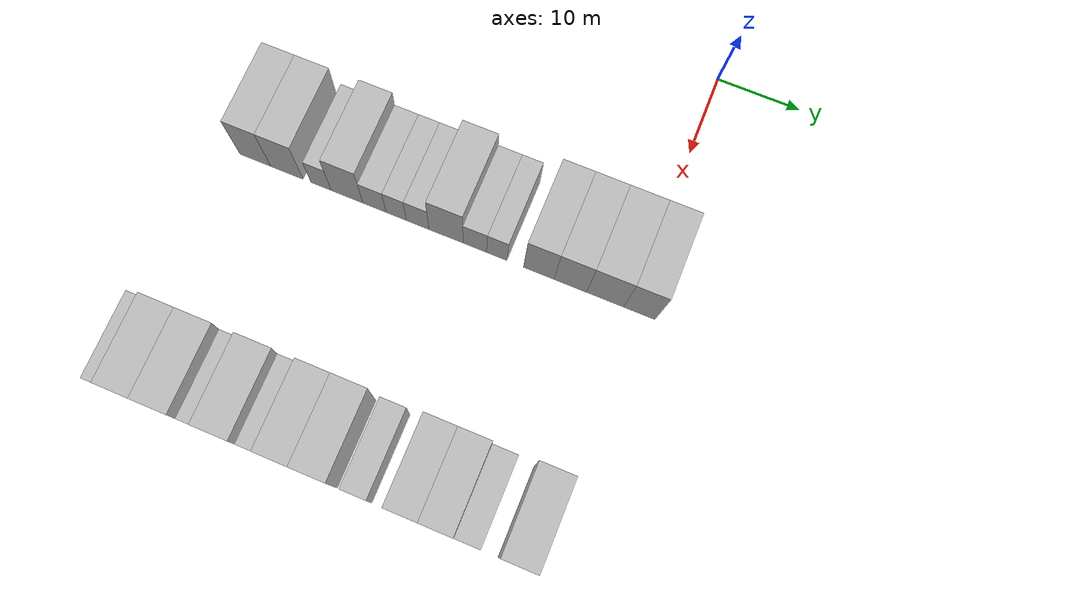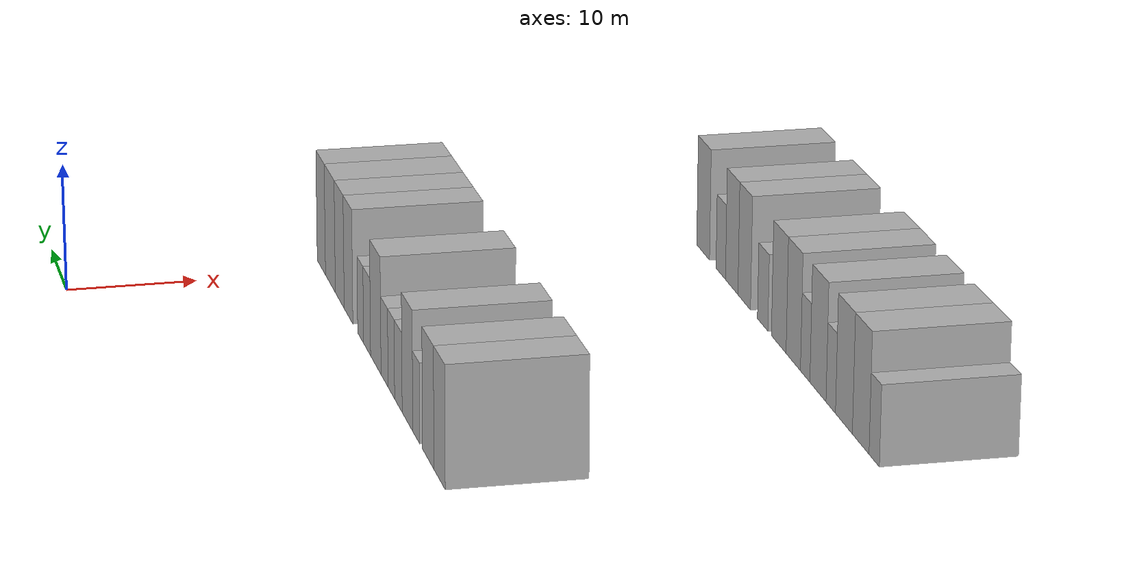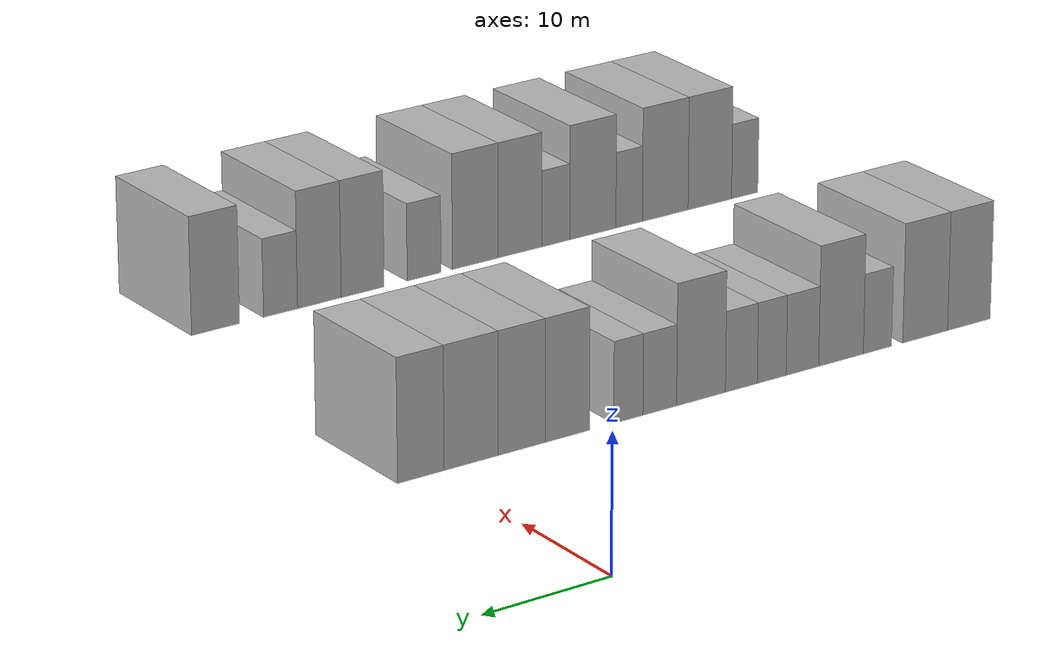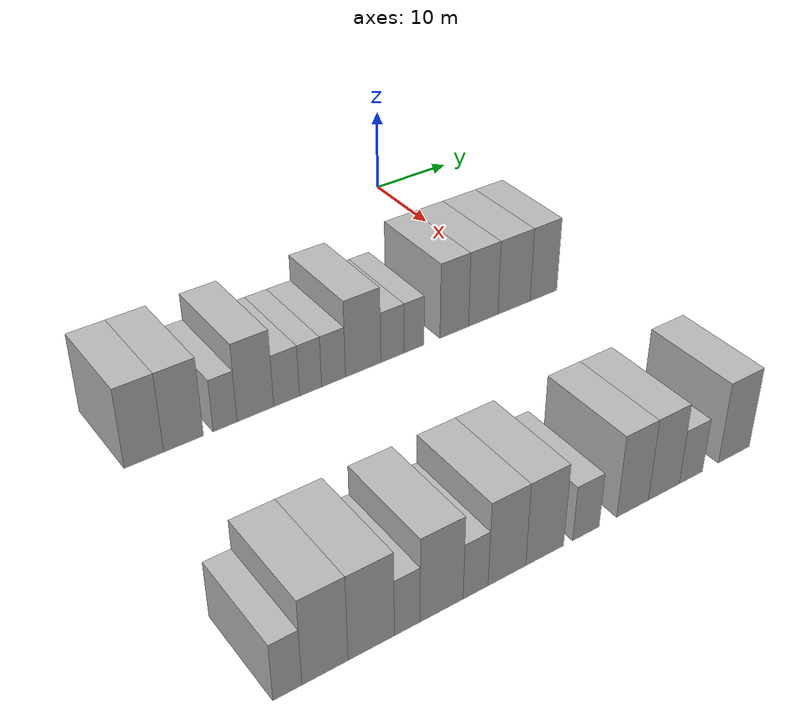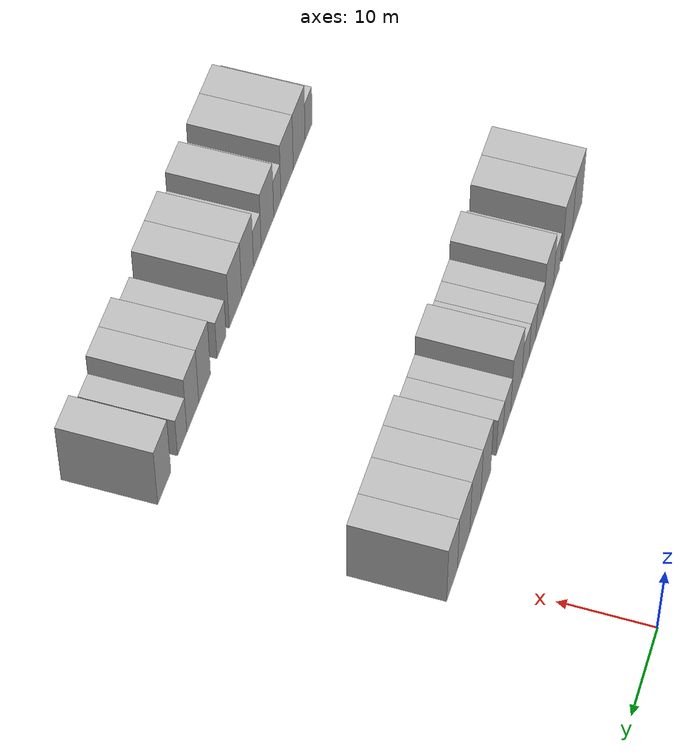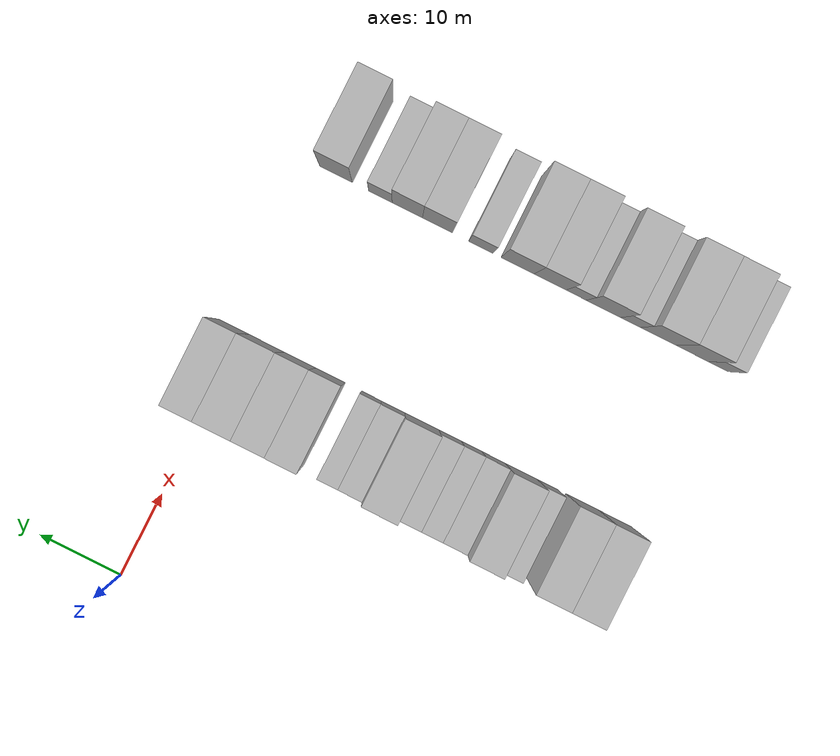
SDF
<sdf version="1.6">
 <world name="default">
  <model name="building_45">
   <static>1</static>
   <pose>25.0000 -45.6187 0 0.000000 0.000000 0.000000</pose>
   <link name="link">
    <pose>0 0 4.50 0 0 0</pose>
    <collision name="collision"><geometry><box><size>10.0000 3.9119 9.0000</size></box></geometry></collision>
    <visual name="visual">
     <cast_shadows>0</cast_shadows>
     <geometry><box><size>10.0000 3.9119 9.0000</size></box></geometry>
     <material>
      <script>
       <uri>model://HANNAS_wall/materials/scripts</uri>
       <uri>model://HANNAS_wall/materials/textures</uri>
       <name>vrc/HANNAS_wall</name>
      </script>
     </material>
    </visual>
   </link>
  </model>
  <model name="building_46">
   <static>1</static>
   <pose>25.0000 -41.6279 0 0.000000 0.000000 0.000000</pose>
   <link name="link">
    <pose>0 0 4.50 0 0 0</pose>
    <collision name="collision"><geometry><box><size>10.0000 4.0698 9.0000</size></box></geometry></collision>
    <visual name="visual">
     <cast_shadows>0</cast_shadows>
     <geometry><box><size>10.0000 4.0698 9.0000</size></box></geometry>
     <material>
      <script>
       <uri>model://HANNAS_wall/materials/scripts</uri>
       <uri>model://HANNAS_wall/materials/textures</uri>
       <name>vrc/HANNAS_wall</name>
      </script>
     </material>
    </visual>
   </link>
  </model>
  <model name="building_47">
   <static>1</static>
   <pose>25.0000 -37.3288 0 0.000000 0.000000 0.000000</pose>
   <link name="link">
    <pose>0 0 3.00 0 0 0</pose>
    <collision name="collision"><geometry><box><size>10.0000 2.5284 6.0000</size></box></geometry></collision>
    <visual name="visual">
     <cast_shadows>0</cast_shadows>
     <geometry><box><size>10.0000 2.5284 6.0000</size></box></geometry>
     <material>
      <script>
       <uri>model://HANNAS_wall/materials/scripts</uri>
       <uri>model://HANNAS_wall/materials/textures</uri>
       <name>vrc/HANNAS_wall</name>
      </script>
     </material>
    </visual>
   </link>
  </model>
  <model name="building_48">
   <static>1</static>
   <pose>25.0000 -34.0871 0 0.000000 0.000000 0.000000</pose>
   <link name="link">
    <pose>0 0 4.50 0 0 0</pose>
    <collision name="collision"><geometry><box><size>10.0000 3.9550 9.0000</size></box></geometry></collision>
    <visual name="visual">
     <cast_shadows>0</cast_shadows>
     <geometry><box><size>10.0000 3.9550 9.0000</size></box></geometry>
     <material>
      <script>
       <uri>model://HANNAS_wall/materials/scripts</uri>
       <uri>model://HANNAS_wall/materials/textures</uri>
       <name>vrc/HANNAS_wall</name>
      </script>
     </material>
    </visual>
   </link>
  </model>
  <model name="building_49">
   <static>1</static>
   <pose>25.0000 -30.6795 0 0.000000 0.000000 0.000000</pose>
   <link name="link">
    <pose>0 0 3.00 0 0 0</pose>
    <collision name="collision"><geometry><box><size>10.0000 2.8601 6.0000</size></box></geometry></collision>
    <visual name="visual">
     <cast_shadows>0</cast_shadows>
     <geometry><box><size>10.0000 2.8601 6.0000</size></box></geometry>
     <material>
      <script>
       <uri>model://HANNAS_wall/materials/scripts</uri>
       <uri>model://HANNAS_wall/materials/textures</uri>
       <name>vrc/HANNAS_wall</name>
      </script>
     </material>
    </visual>
   </link>
  </model>
  <model name="building_50">
   <static>1</static>
   <pose>25.0000 -27.9925 0 0.000000 0.000000 0.000000</pose>
   <link name="link">
    <pose>0 0 3.00 0 0 0</pose>
    <collision name="collision"><geometry><box><size>10.0000 2.5141 6.0000</size></box></geometry></collision>
    <visual name="visual">
     <cast_shadows>0</cast_shadows>
     <geometry><box><size>10.0000 2.5141 6.0000</size></box></geometry>
     <material>
      <script>
       <uri>model://HANNAS_wall/materials/scripts</uri>
       <uri>model://HANNAS_wall/materials/textures</uri>
       <name>vrc/HANNAS_wall</name>
      </script>
     </material>
    </visual>
   </link>
  </model>
  <model name="building_51">
   <static>1</static>
   <pose>25.0000 -25.3602 0 0.000000 0.000000 0.000000</pose>
   <link name="link">
    <pose>0 0 3.00 0 0 0</pose>
    <collision name="collision"><geometry><box><size>10.0000 2.7504 6.0000</size></box></geometry></collision>
    <visual name="visual">
     <cast_shadows>0</cast_shadows>
     <geometry><box><size>10.0000 2.7504 6.0000</size></box></geometry>
     <material>
      <script>
       <uri>model://HANNAS_wall/materials/scripts</uri>
       <uri>model://HANNAS_wall/materials/textures</uri>
       <name>vrc/HANNAS_wall</name>
      </script>
     </material>
    </visual>
   </link>
  </model>
  <model name="building_52">
   <static>1</static>
   <pose>25.0000 -21.8996 0 0.000000 0.000000 0.000000</pose>
   <link name="link">
    <pose>0 0 4.50 0 0 0</pose>
    <collision name="collision"><geometry><box><size>10.0000 4.1709 9.0000</size></box></geometry></collision>
    <visual name="visual">
     <cast_shadows>0</cast_shadows>
     <geometry><box><size>10.0000 4.1709 9.0000</size></box></geometry>
     <material>
      <script>
       <uri>model://HANNAS_wall/materials/scripts</uri>
       <uri>model://HANNAS_wall/materials/textures</uri>
       <name>vrc/HANNAS_wall</name>
      </script>
     </material>
    </visual>
   </link>
  </model>
  <model name="building_53">
   <static>1</static>
   <pose>25.0000 -18.3939 0 0.000000 0.000000 0.000000</pose>
   <link name="link">
    <pose>0 0 3.00 0 0 0</pose>
    <collision name="collision"><geometry><box><size>10.0000 2.8404 6.0000</size></box></geometry></collision>
    <visual name="visual">
     <cast_shadows>0</cast_shadows>
     <geometry><box><size>10.0000 2.8404 6.0000</size></box></geometry>
     <material>
      <script>
       <uri>model://HANNAS_wall/materials/scripts</uri>
       <uri>model://HANNAS_wall/materials/textures</uri>
       <name>vrc/HANNAS_wall</name>
      </script>
     </material>
    </visual>
   </link>
  </model>
  <model name="building_54">
   <static>1</static>
   <pose>25.0000 -15.7476 0 0.000000 0.000000 0.000000</pose>
   <link name="link">
    <pose>0 0 3.00 0 0 0</pose>
    <collision name="collision"><geometry><box><size>10.0000 2.4521 6.0000</size></box></geometry></collision>
    <visual name="visual">
     <cast_shadows>0</cast_shadows>
     <geometry><box><size>10.0000 2.4521 6.0000</size></box></geometry>
     <material>
      <script>
       <uri>model://HANNAS_wall/materials/scripts</uri>
       <uri>model://HANNAS_wall/materials/textures</uri>
       <name>vrc/HANNAS_wall</name>
      </script>
     </material>
    </visual>
   </link>
  </model>
  <model name="building_55">
   <static>1</static>
   <pose>25.0000 -10.6931 0 0.000000 0.000000 0.000000</pose>
   <link name="link">
    <pose>0 0 4.50 0 0 0</pose>
    <collision name="collision"><geometry><box><size>10.0000 3.6571 9.0000</size></box></geometry></collision>
    <visual name="visual">
     <cast_shadows>0</cast_shadows>
     <geometry><box><size>10.0000 3.6571 9.0000</size></box></geometry>
     <material>
      <script>
       <uri>model://HANNAS_wall/materials/scripts</uri>
       <uri>model://HANNAS_wall/materials/textures</uri>
       <name>vrc/HANNAS_wall</name>
      </script>
     </material>
    </visual>
   </link>
  </model>
  <model name="building_56">
   <static>1</static>
   <pose>25.0000 -6.9406 0 0.000000 0.000000 0.000000</pose>
   <link name="link">
    <pose>0 0 4.50 0 0 0</pose>
    <collision name="collision"><geometry><box><size>10.0000 3.8477 9.0000</size></box></geometry></collision>
    <visual name="visual">
     <cast_shadows>0</cast_shadows>
     <geometry><box><size>10.0000 3.8477 9.0000</size></box></geometry>
     <material>
      <script>
       <uri>model://HANNAS_wall/materials/scripts</uri>
       <uri>model://HANNAS_wall/materials/textures</uri>
       <name>vrc/HANNAS_wall</name>
      </script>
     </material>
    </visual>
   </link>
  </model>
  <model name="building_57">
   <static>1</static>
   <pose>25.0000 -2.8340 0 0.000000 0.000000 0.000000</pose>
   <link name="link">
    <pose>0 0 4.50 0 0 0</pose>
    <collision name="collision"><geometry><box><size>10.0000 4.3655 9.0000</size></box></geometry></collision>
    <visual name="visual">
     <cast_shadows>0</cast_shadows>
     <geometry><box><size>10.0000 4.3655 9.0000</size></box></geometry>
     <material>
      <script>
       <uri>model://HANNAS_wall/materials/scripts</uri>
       <uri>model://HANNAS_wall/materials/textures</uri>
       <name>vrc/HANNAS_wall</name>
      </script>
     </material>
    </visual>
   </link>
  </model>
  <model name="building_58">
   <static>1</static>
   <pose>25.0000 1.2045 0 0.000000 0.000000 0.000000</pose>
   <link name="link">
    <pose>0 0 4.50 0 0 0</pose>
    <collision name="collision"><geometry><box><size>10.0000 3.7116 9.0000</size></box></geometry></collision>
    <visual name="visual">
     <cast_shadows>0</cast_shadows>
     <geometry><box><size>10.0000 3.7116 9.0000</size></box></geometry>
     <material>
      <script>
       <uri>model://HANNAS_wall/materials/scripts</uri>
       <uri>model://HANNAS_wall/materials/textures</uri>
       <name>vrc/HANNAS_wall</name>
      </script>
     </material>
    </visual>
   </link>
  </model>
  <model name="building_149">
   <static>1</static>
   <pose>55.0000 -48.3259 0 0.000000 0.000000 0.000000</pose>
   <link name="link">
    <pose>0 0 3.00 0 0 0</pose>
    <collision name="collision"><geometry><box><size>10.0000 2.4974 6.0000</size></box></geometry></collision>
    <visual name="visual">
     <cast_shadows>0</cast_shadows>
     <geometry><box><size>10.0000 2.4974 6.0000</size></box></geometry>
     <material>
      <script>
       <uri>model://HANNAS_wall/materials/scripts</uri>
       <uri>model://HANNAS_wall/materials/textures</uri>
       <name>vrc/HANNAS_wall</name>
      </script>
     </material>
    </visual>
   </link>
  </model>
  <model name="building_150">
   <static>1</static>
   <pose>55.0000 -45.0313 0 0.000000 0.000000 0.000000</pose>
   <link name="link">
    <pose>0 0 4.50 0 0 0</pose>
    <collision name="collision"><geometry><box><size>10.0000 4.0917 9.0000</size></box></geometry></collision>
    <visual name="visual">
     <cast_shadows>0</cast_shadows>
     <geometry><box><size>10.0000 4.0917 9.0000</size></box></geometry>
     <material>
      <script>
       <uri>model://HANNAS_wall/materials/scripts</uri>
       <uri>model://HANNAS_wall/materials/textures</uri>
       <name>vrc/HANNAS_wall</name>
      </script>
     </material>
    </visual>
   </link>
  </model>
  <model name="building_151">
   <static>1</static>
   <pose>55.0000 -40.8586 0 0.000000 0.000000 0.000000</pose>
   <link name="link">
    <pose>0 0 4.50 0 0 0</pose>
    <collision name="collision"><geometry><box><size>10.0000 4.2538 9.0000</size></box></geometry></collision>
    <visual name="visual">
     <cast_shadows>0</cast_shadows>
     <geometry><box><size>10.0000 4.2538 9.0000</size></box></geometry>
     <material>
      <script>
       <uri>model://HANNAS_wall/materials/scripts</uri>
       <uri>model://HANNAS_wall/materials/textures</uri>
       <name>vrc/HANNAS_wall</name>
      </script>
     </material>
    </visual>
   </link>
  </model>
  <model name="building_152">
   <static>1</static>
   <pose>55.0000 -37.5166 0 0.000000 0.000000 0.000000</pose>
   <link name="link">
    <pose>0 0 3.00 0 0 0</pose>
    <collision name="collision"><geometry><box><size>10.0000 2.4303 6.0000</size></box></geometry></collision>
    <visual name="visual">
     <cast_shadows>0</cast_shadows>
     <geometry><box><size>10.0000 2.4303 6.0000</size></box></geometry>
     <material>
      <script>
       <uri>model://HANNAS_wall/materials/scripts</uri>
       <uri>model://HANNAS_wall/materials/textures</uri>
       <name>vrc/HANNAS_wall</name>
      </script>
     </material>
    </visual>
   </link>
  </model>
  <model name="building_153">
   <static>1</static>
   <pose>55.0000 -34.1890 0 0.000000 0.000000 0.000000</pose>
   <link name="link">
    <pose>0 0 4.50 0 0 0</pose>
    <collision name="collision"><geometry><box><size>10.0000 4.2249 9.0000</size></box></geometry></collision>
    <visual name="visual">
     <cast_shadows>0</cast_shadows>
     <geometry><box><size>10.0000 4.2249 9.0000</size></box></geometry>
     <material>
      <script>
       <uri>model://HANNAS_wall/materials/scripts</uri>
       <uri>model://HANNAS_wall/materials/textures</uri>
       <name>vrc/HANNAS_wall</name>
      </script>
     </material>
    </visual>
   </link>
  </model>
  <model name="building_154">
   <static>1</static>
   <pose>55.0000 -30.8187 0 0.000000 0.000000 0.000000</pose>
   <link name="link">
    <pose>0 0 3.00 0 0 0</pose>
    <collision name="collision"><geometry><box><size>10.0000 2.5157 6.0000</size></box></geometry></collision>
    <visual name="visual">
     <cast_shadows>0</cast_shadows>
     <geometry><box><size>10.0000 2.5157 6.0000</size></box></geometry>
     <material>
      <script>
       <uri>model://HANNAS_wall/materials/scripts</uri>
       <uri>model://HANNAS_wall/materials/textures</uri>
       <name>vrc/HANNAS_wall</name>
      </script>
     </material>
    </visual>
   </link>
  </model>
  <model name="building_155">
   <static>1</static>
   <pose>55.0000 -27.6068 0 0.000000 0.000000 0.000000</pose>
   <link name="link">
    <pose>0 0 4.50 0 0 0</pose>
    <collision name="collision"><geometry><box><size>10.0000 3.9082 9.0000</size></box></geometry></collision>
    <visual name="visual">
     <cast_shadows>0</cast_shadows>
     <geometry><box><size>10.0000 3.9082 9.0000</size></box></geometry>
     <material>
      <script>
       <uri>model://HANNAS_wall/materials/scripts</uri>
       <uri>model://HANNAS_wall/materials/textures</uri>
       <name>vrc/HANNAS_wall</name>
      </script>
     </material>
    </visual>
   </link>
  </model>
  <model name="building_156">
   <static>1</static>
   <pose>55.0000 -23.6167 0 0.000000 0.000000 0.000000</pose>
   <link name="link">
    <pose>0 0 4.50 0 0 0</pose>
    <collision name="collision"><geometry><box><size>10.0000 4.0719 9.0000</size></box></geometry></collision>
    <visual name="visual">
     <cast_shadows>0</cast_shadows>
     <geometry><box><size>10.0000 4.0719 9.0000</size></box></geometry>
     <material>
      <script>
       <uri>model://HANNAS_wall/materials/scripts</uri>
       <uri>model://HANNAS_wall/materials/textures</uri>
       <name>vrc/HANNAS_wall</name>
      </script>
     </material>
    </visual>
   </link>
  </model>
  <model name="building_157">
   <static>1</static>
   <pose>55.0000 -19.0972 0 0.000000 0.000000 0.000000</pose>
   <link name="link">
    <pose>0 0 3.00 0 0 0</pose>
    <collision name="collision"><geometry><box><size>10.0000 2.9671 6.0000</size></box></geometry></collision>
    <visual name="visual">
     <cast_shadows>0</cast_shadows>
     <geometry><box><size>10.0000 2.9671 6.0000</size></box></geometry>
     <material>
      <script>
       <uri>model://HANNAS_wall/materials/scripts</uri>
       <uri>model://HANNAS_wall/materials/textures</uri>
       <name>vrc/HANNAS_wall</name>
      </script>
     </material>
    </visual>
   </link>
  </model>
  <model name="building_158">
   <static>1</static>
   <pose>55.0000 -13.7635 0 0.000000 0.000000 0.000000</pose>
   <link name="link">
    <pose>0 0 4.50 0 0 0</pose>
    <collision name="collision"><geometry><box><size>10.0000 3.7003 9.0000</size></box></geometry></collision>
    <visual name="visual">
     <cast_shadows>0</cast_shadows>
     <geometry><box><size>10.0000 3.7003 9.0000</size></box></geometry>
     <material>
      <script>
       <uri>model://HANNAS_wall/materials/scripts</uri>
       <uri>model://HANNAS_wall/materials/textures</uri>
       <name>vrc/HANNAS_wall</name>
      </script>
     </material>
    </visual>
   </link>
  </model>
  <model name="building_159">
   <static>1</static>
   <pose>55.0000 -10.0526 0 0.000000 0.000000 0.000000</pose>
   <link name="link">
    <pose>0 0 4.50 0 0 0</pose>
    <collision name="collision"><geometry><box><size>10.0000 3.7215 9.0000</size></box></geometry></collision>
    <visual name="visual">
     <cast_shadows>0</cast_shadows>
     <geometry><box><size>10.0000 3.7215 9.0000</size></box></geometry>
     <material>
      <script>
       <uri>model://HANNAS_wall/materials/scripts</uri>
       <uri>model://HANNAS_wall/materials/textures</uri>
       <name>vrc/HANNAS_wall</name>
      </script>
     </material>
    </visual>
   </link>
  </model>
  <model name="building_160">
   <static>1</static>
   <pose>55.0000 -6.7533 0 0.000000 0.000000 0.000000</pose>
   <link name="link">
    <pose>0 0 3.00 0 0 0</pose>
    <collision name="collision"><geometry><box><size>10.0000 2.8772 6.0000</size></box></geometry></collision>
    <visual name="visual">
     <cast_shadows>0</cast_shadows>
     <geometry><box><size>10.0000 2.8772 6.0000</size></box></geometry>
     <material>
      <script>
       <uri>model://HANNAS_wall/materials/scripts</uri>
       <uri>model://HANNAS_wall/materials/textures</uri>
       <name>vrc/HANNAS_wall</name>
      </script>
     </material>
    </visual>
   </link>
  </model>
  <model name="building_161">
   <static>1</static>
   <pose>55.0000 -1.3154 0 0.000000 0.000000 0.000000</pose>
   <link name="link">
    <pose>0 0 4.50 0 0 0</pose>
    <collision name="collision"><geometry><box><size>10.0000 3.9986 9.0000</size></box></geometry></collision>
    <visual name="visual">
     <cast_shadows>0</cast_shadows>
     <geometry><box><size>10.0000 3.9986 9.0000</size></box></geometry>
     <material>
      <script>
       <uri>model://HANNAS_wall/materials/scripts</uri>
       <uri>model://HANNAS_wall/materials/textures</uri>
       <name>vrc/HANNAS_wall</name>
      </script>
     </material>
    </visual>
   </link>
  </model>
 </world>
</sdf>
